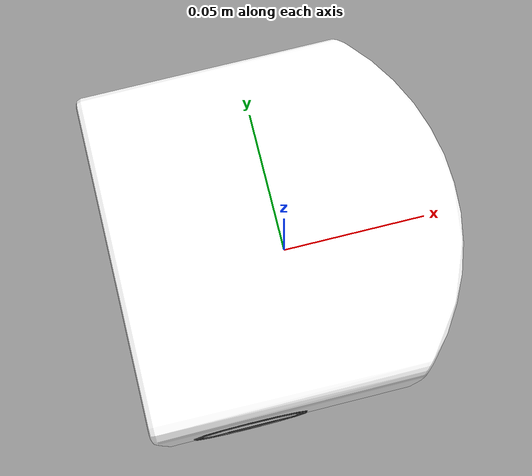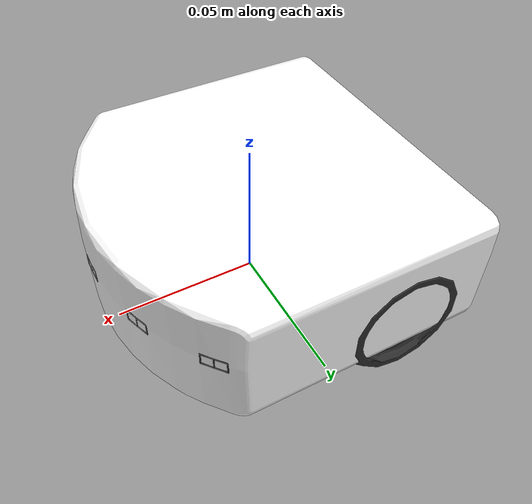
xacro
<?xml version="1.0"?>
<robot xmlns:xacro="http://www.ros.org/wiki/xacro" name="thymio">
  <material name="white">
    <color rgba="1.0 1.0 1.0 1.0"/>
  </material>
  <material name="black">
    <color rgba="0.175 0.175 0.175 1.0"/>
  </material>

  <xacro:arg name="left_wheel_mu" default="100.0"/>
  <xacro:property name="left_wheel_mu_p" value="$(arg left_wheel_mu)"/>

  <xacro:arg name="right_wheel_mu" default="100.0"/>
  <xacro:property name="right_wheel_mu_p" value="$(arg right_wheel_mu)"/>

  <xacro:arg name="mass" default="0.200"/>
  <xacro:property name="mass_p" value="$(arg mass)"/>

  <!-- Body mass is 80% of total mass -->
  <xacro:property name="body_mass" value="${mass_p * 0.80}"/>
  <!-- Each wheel is 10% of total mass -->
  <xacro:property name="wheel_mass" value="${mass_p * 0.10}"/>

  <xacro:arg name="use_ns" default="false"/>
  <xacro:arg name="robot_ns" default=""/>
  <xacro:macro name="proximity_sensor" params="name topic_name parent_link:=base_link xyz rpy update_rate:=10 range_min:=0.005 range_max:=1.0 resolution:=0.005 fov:=0.4">
    <link name="${name}_link">
      <inertial>
        <mass value="1e-3"/>
        <inertia ixx="1e-3" ixy="0" ixz="0" iyy="1e-3" iyz="0" izz="1e-3"/>
      </inertial>
    </link>
    <joint name="${name}_joint" type="fixed">
      <origin xyz="${xyz}" rpy="${rpy}"/>
      <parent link="${parent_link}"/>
      <child link="${name}_link"/>
    </joint>
    <gazebo reference="${name}_link">
      <sensor name="${name}_sensor" type="ray">
        <visualize>true</visualize>
        <update_rate>${update_rate}</update_rate>
        <always_on>true</always_on>
        <ray>
          <range>
            <min>${range_min}</min>
            <max>${range_max}</max>
            <resolution>${resolution}</resolution>
          </range>
        </ray>
        <plugin name="${name}_controller" filename="libgazebo_ros_range.so">
          <alwaysOn>true</alwaysOn>
          <updateRate>${update_rate}</updateRate>
          <xacro:if value="$(arg use_ns)">
            <robotNamespace>$(arg robot_ns)</robotNamespace>
            <frameName>$(arg robot_ns)/${name}_link</frameName>
          </xacro:if>
          <xacro:unless value="$(arg use_ns)">
            <frameName>${name}_link</frameName>
          </xacro:unless>
          <topicName>${topic_name}</topicName>
          <radiation>infrared</radiation>
          <fov>${fov}</fov>
          <gaussianNoise>${resolution/2}</gaussianNoise>
        </plugin>
      </sensor>
      <material>Gazebo/DarkGrey</material>
    </gazebo>
  </xacro:macro>
  <xacro:macro name="thymio_robot">
    <link name="base_link">
      <inertial>
        <mass value="${body_mass}"/>
        <inertia ixx="${0.0012141 * body_mass}" ixy="0" ixz="0" iyy="${0.0011771 * body_mass}" iyz="0" izz="${0.00205365 * body_mass}"/>
      </inertial>
      <collision>
        <geometry>
          <mesh filename="package://thymio_description/models/meshes/thymio_body_collision.dae"/>
        </geometry>
      </collision>
      <collision>
        <origin xyz="0.035 0 0"/>
        <geometry>
          <sphere radius="0.009"/>
        </geometry>
      </collision>
      <visual>
        <geometry>
          <mesh filename="package://thymio_description/models/meshes/thymio_body.dae"/>
        </geometry>
        <material name="white"/>
      </visual>
    </link>
    <joint name="proximity_joint" type="fixed">
      <parent link="base_link"/>
      <child link="proximity"/>
      <axis xyz="0 0 1"/>
    </joint>
    <link name="proximity">
      <visual>
        <geometry>
          <mesh filename="package://thymio_description/models/meshes/thymio_proximity_sensors.dae"/>
        </geometry>
        <material name="black"/>
      </visual>
    </link>
    <gazebo reference="proximity">
      <material>Gazebo/DarkGrey</material>
    </gazebo>
    <joint name="left_wheel_joint" type="continuous">
      <parent link="base_link"/>
      <child link="left_wheel_link"/>
      <axis xyz="0 1 0"/>
      <origin xyz="-0.025 0.047 0.013"/>
    </joint>
    <gazebo reference="base_link">
      <selfCollide>true</selfCollide>
      <mu1>0.0</mu1>
      <mu2>0.0</mu2>
      <material>Gazebo/White</material>
    </gazebo>
    <link name="left_wheel_link">
      <inertial>
        <mass value="${wheel_mass}"/>
        <inertia ixx="${0.0001452 * wheel_mass}" ixy="0" ixz="0" iyy="${0.000242 * wheel_mass}" iyz="0" izz="${0.0001452 * wheel_mass}"/>
      </inertial>
      <collision>
        <origin xyz="0 0.00175 0" rpy="1.5707 0 0"/>
        <geometry>
          <cylinder radius="0.022" length="0.015"/>
        </geometry>
      </collision>
      <visual>
        <geometry>
          <mesh filename="package://thymio_description/models/meshes/thymio_left_wheel.dae"/>
        </geometry>
        <material name="black"/>
      </visual>
    </link>
    <gazebo reference="left_wheel_link">
      <mu1>${left_wheel_mu_p}</mu1>
      <mu2>${left_wheel_mu_p / 2.0}</mu2>
      <material>Gazebo/DarkGrey</material>
    </gazebo>
    <joint name="right_wheel_joint" type="continuous">
      <parent link="base_link"/>
      <child link="right_wheel_link"/>
      <axis xyz="0 1 0"/>
      <origin xyz="-0.025 -0.047 0.013"/>
    </joint>
    <link name="right_wheel_link">
      <inertial>
        <mass value="${wheel_mass}"/>
        <inertia ixx="${0.0001452 * wheel_mass}" ixy="0" ixz="0" iyy="${0.000242 * wheel_mass}" iyz="0" izz="${0.0001452 * wheel_mass}"/>
      </inertial>
      <collision>
        <origin xyz="0 -0.00175 0" rpy="1.5707 0 0"/>
        <geometry>
          <cylinder radius="0.022" length="0.015"/>
        </geometry>
      </collision>
      <visual>
        <geometry>
          <mesh filename="package://thymio_description/models/meshes/thymio_right_wheel.dae"/>
        </geometry>
        <material name="black"/>
      </visual>
    </link>
    <gazebo reference="right_wheel_link">
      <mu1>${right_wheel_mu_p}</mu1>
      <mu2>${right_wheel_mu_p / 2.0}</mu2>
      <material>Gazebo/DarkGrey</material>
    </gazebo>

    <xacro:proximity_sensor name="proximity_center" topic_name="proximity/center" xyz="0.055 0 0.026" rpy="0 0 0"/>
    <xacro:proximity_sensor name="proximity_center_left" topic_name="proximity/center_left" xyz="0.0506 0.0261 0.026" rpy="0 0 0.33161"/>
    <xacro:proximity_sensor name="proximity_center_right" topic_name="proximity/center_right" xyz="0.0506 -0.0261 0.026" rpy="0 0 -0.33161"/>
    <xacro:proximity_sensor name="proximity_left" topic_name="proximity/left" xyz="0.0380 0.0493 0.026" rpy="0 0 0.66323"/>
    <xacro:proximity_sensor name="proximity_right" topic_name="proximity/right" xyz="0.0380 -0.0493 0.026" rpy="0 0 -0.66323"/>
    <xacro:proximity_sensor name="proximity_rear_left" topic_name="proximity/rear_left" xyz="-0.055 0.0305 0.026" rpy="0 0 3.14159"/>
    <xacro:proximity_sensor name="proximity_rear_right" topic_name="proximity/rear_right" xyz="-0.055 -0.0305 0.026" rpy="0 0 3.14159"/>
    <xacro:proximity_sensor name="ground_left" topic_name="ground/left" xyz="0.04657 0.01155 0.0" rpy="0 1.5708 0.24311"/>
    <xacro:proximity_sensor name="ground_right" topic_name="ground/right" xyz="0.04657 -0.01155 0.0" rpy="0 1.5708 -0.24311"/>

    <gazebo>
      <plugin name="differential_drive_controller" filename="libgazebo_ros_diff_drive.so">
        <alwaysOn>true</alwaysOn>
        <updateRate>100</updateRate>
        <leftJoint>right_wheel_joint</leftJoint>
        <rightJoint>left_wheel_joint</rightJoint>
        <wheelSeparation>0.0955</wheelSeparation>
        <wheelDiameter>0.044</wheelDiameter>
        <wheelTorque>0.005</wheelTorque>
        <commandTopic>cmd_vel</commandTopic>
        <odometryTopic>odom</odometryTopic>
        <odometryFrame>odom</odometryFrame>
        <publishWheelJointState>true</publishWheelJointState>
        <publishWheelTF>true</publishWheelTF>
        <publishTf>1</publishTf>
        <xacro:if value="$(arg use_ns)">
          <robotNamespace>$(arg robot_ns)</robotNamespace>
        </xacro:if>
        <robotBaseFrame>base_link</robotBaseFrame>
      </plugin>
    </gazebo>
  </xacro:macro>
  <xacro:thymio_robot />
</robot>
